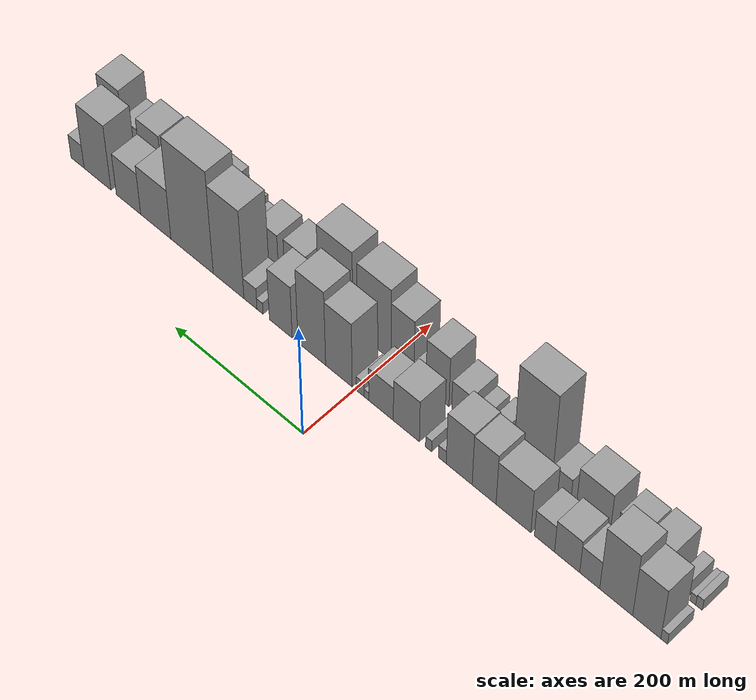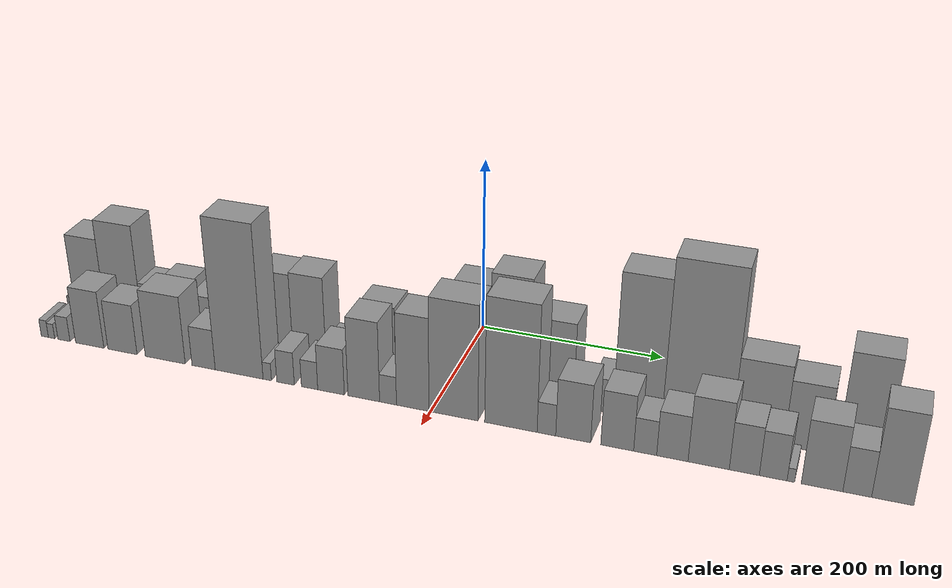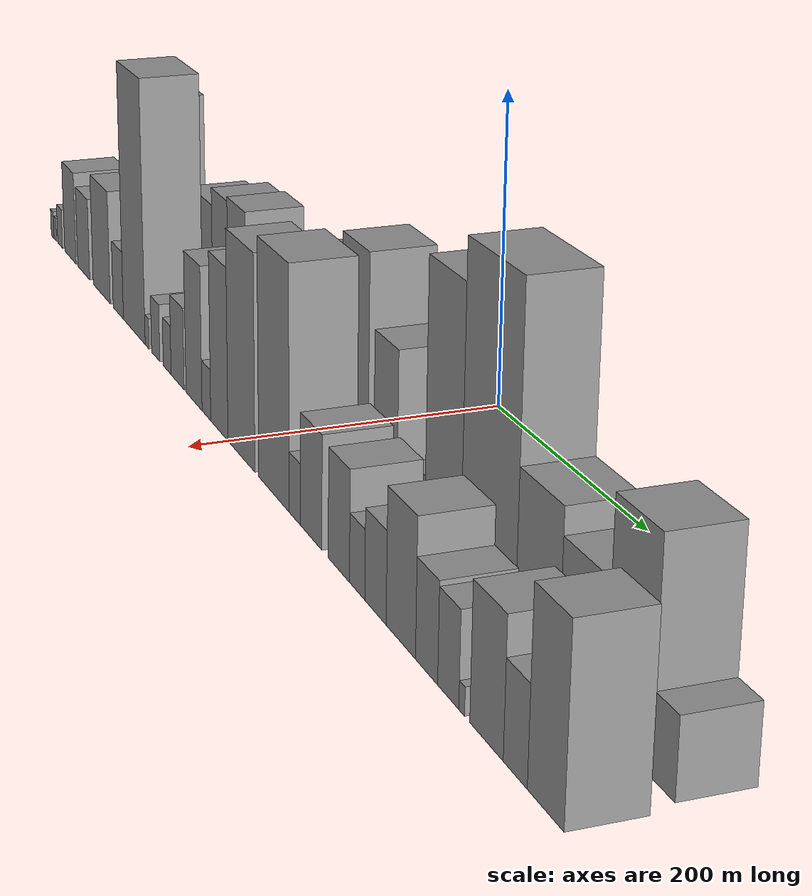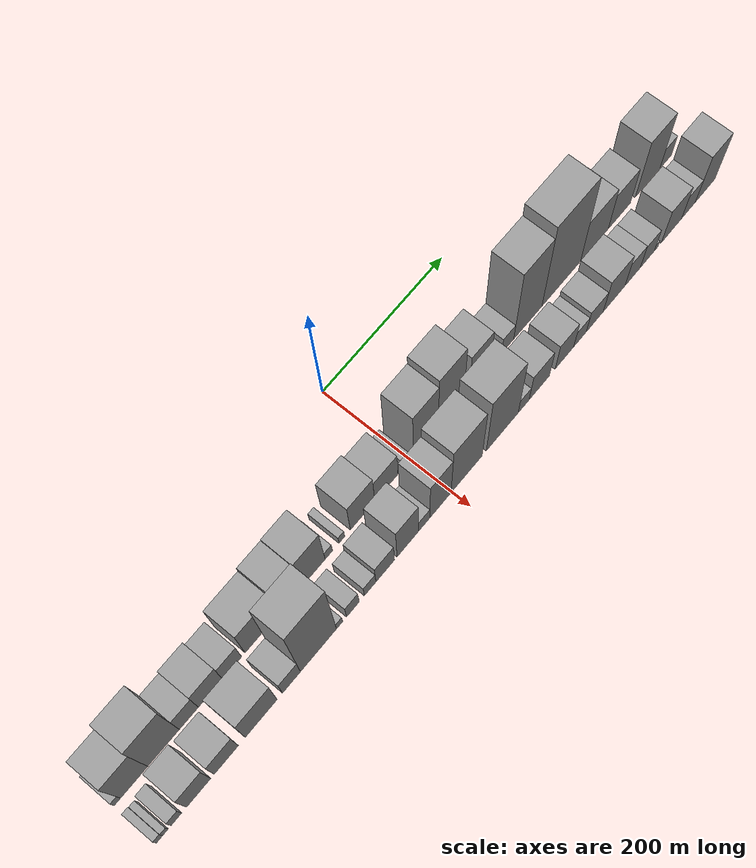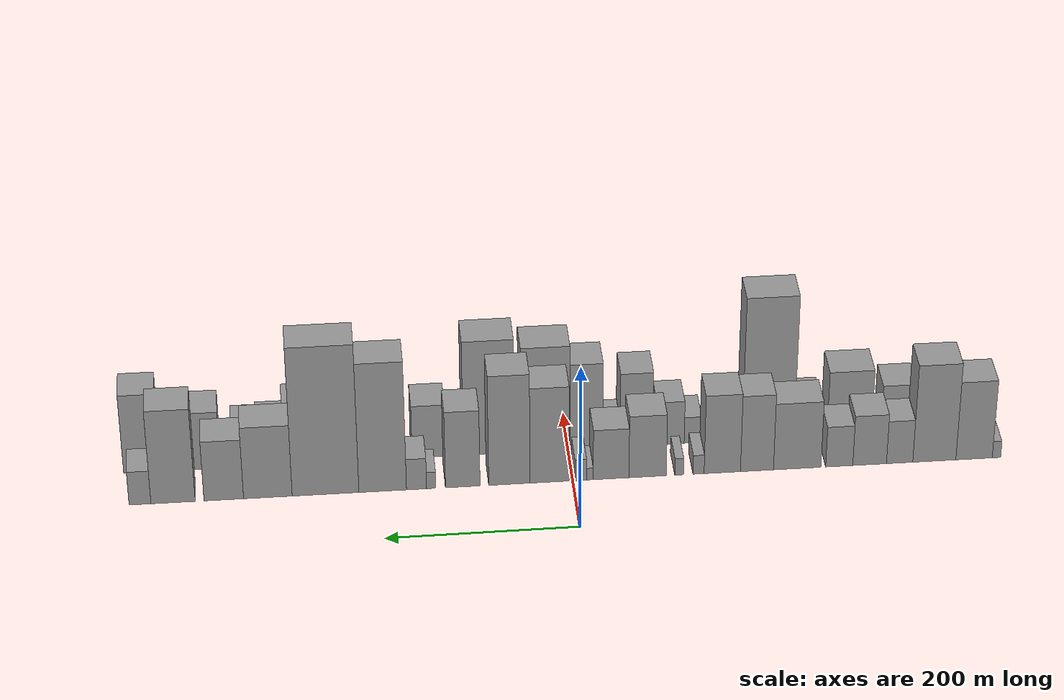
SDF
<sdf version="1.6">
 <world name="default">
  <scene>
   <sky><clouds><speed>12</speed></clouds></sky>
   <ambient>0.4 0.4 0.4 1</ambient>
   <background>0.7 0.7 0.7 1</background>
   <shadows>1</shadows>
  </scene>
  <gravity>0 0 -9.8066</gravity>
  <magnetic_field>6e-06 2.3e-05 -4.2e-05</magnetic_field>
  <physics default="0" name="default_physics" type="ode">
   <ode>
    <solver>
     <type>quick</type>
     <iters>10</iters>
     <sor>1.0</sor>
     <use_dynamic_moi_rescaling>0</use_dynamic_moi_rescaling>
    </solver>
    <constraints>
     <cfm>0</cfm>
     <erp>0.2</erp>
     <contact_max_correcting_vel>100</contact_max_correcting_vel>
     <contact_surface_layer>0.001</contact_surface_layer>
    </constraints>
   </ode>
   <max_step_size>0.004</max_step_size>
   <real_time_factor>1</real_time_factor>
   <real_time_update_rate>250</real_time_update_rate>
  </physics>
  <light name="sun" type="directional">
   <pose>0 0 10 0 0 0</pose>
   <diffuse>0.8 0.8 0.8 1</diffuse>
   <specular>0.2 0.2 0.2 1</specular>
   <attenuation>
    <range>1000</range>
    <constant>0.9</constant>
    <linear>0.01</linear>
    <quadratic>0.001</quadratic>
   </attenuation>
   <direction>-0.5 0.1 -0.9</direction>
  </light>
  <model name="building_1">
   <static>1</static>
   <pose>100.0000 -445.4748 0 0.000000 0.000000 0.000000</pose>
   <link name="link">
    <pose>0 0 10.50 0 0 0</pose>
    <collision name="collision"><geometry><box><size>40.0000 9.0504 21.0000</size></box></geometry></collision>
    <visual name="visual">
     <cast_shadows>0</cast_shadows>
     <geometry><box><size>40.0000 9.0504 21.0000</size></box></geometry>
     <material>
      <script>
       <uri>model://grey_wall/materials/scripts</uri>
       <uri>model://grey_wall/materials/textures</uri>
       <name>vrc/grey_wall</name>
      </script>
     </material>
    </visual>
   </link>
  </model>
  <model name="building_2">
   <static>1</static>
   <pose>100.0000 -421.6555 0 0.000000 0.000000 0.000000</pose>
   <link name="link">
    <pose>0 0 49.50 0 0 0</pose>
    <collision name="collision"><geometry><box><size>40.0000 38.5883 99.0000</size></box></geometry></collision>
    <visual name="visual">
     <cast_shadows>0</cast_shadows>
     <geometry><box><size>40.0000 38.5883 99.0000</size></box></geometry>
     <material>
      <script>
       <uri>model://grey_wall/materials/scripts</uri>
       <uri>model://grey_wall/materials/textures</uri>
       <name>vrc/grey_wall</name>
      </script>
     </material>
    </visual>
   </link>
  </model>
  <model name="building_3">
   <static>1</static>
   <pose>100.0000 -379.5401 0 0.000000 0.000000 0.000000</pose>
   <link name="link">
    <pose>0 0 61.50 0 0 0</pose>
    <collision name="collision"><geometry><box><size>40.0000 45.6425 123.0000</size></box></geometry></collision>
    <visual name="visual">
     <cast_shadows>0</cast_shadows>
     <geometry><box><size>40.0000 45.6425 123.0000</size></box></geometry>
     <material>
      <script>
       <uri>model://grey_wall/materials/scripts</uri>
       <uri>model://grey_wall/materials/textures</uri>
       <name>vrc/grey_wall</name>
      </script>
     </material>
    </visual>
   </link>
  </model>
  <model name="building_4">
   <static>1</static>
   <pose>100.0000 -342.8014 0 0.000000 0.000000 0.000000</pose>
   <link name="link">
    <pose>0 0 27.00 0 0 0</pose>
    <collision name="collision"><geometry><box><size>40.0000 27.8349 54.0000</size></box></geometry></collision>
    <visual name="visual">
     <cast_shadows>0</cast_shadows>
     <geometry><box><size>40.0000 27.8349 54.0000</size></box></geometry>
     <material>
      <script>
       <uri>model://grey_wall/materials/scripts</uri>
       <uri>model://grey_wall/materials/textures</uri>
       <name>vrc/grey_wall</name>
      </script>
     </material>
    </visual>
   </link>
  </model>
  <model name="building_5">
   <static>1</static>
   <pose>100.0000 -311.0895 0 0.000000 0.000000 0.000000</pose>
   <link name="link">
    <pose>0 0 31.50 0 0 0</pose>
    <collision name="collision"><geometry><box><size>40.0000 35.5888 63.0000</size></box></geometry></collision>
    <visual name="visual">
     <cast_shadows>0</cast_shadows>
     <geometry><box><size>40.0000 35.5888 63.0000</size></box></geometry>
     <material>
      <script>
       <uri>model://grey_wall/materials/scripts</uri>
       <uri>model://grey_wall/materials/textures</uri>
       <name>vrc/grey_wall</name>
      </script>
     </material>
    </visual>
   </link>
  </model>
  <model name="building_6">
   <static>1</static>
   <pose>100.0000 -278.9993 0 0.000000 0.000000 0.000000</pose>
   <link name="link">
    <pose>0 0 25.50 0 0 0</pose>
    <collision name="collision"><geometry><box><size>40.0000 28.5917 51.0000</size></box></geometry></collision>
    <visual name="visual">
     <cast_shadows>0</cast_shadows>
     <geometry><box><size>40.0000 28.5917 51.0000</size></box></geometry>
     <material>
      <script>
       <uri>model://grey_wall/materials/scripts</uri>
       <uri>model://grey_wall/materials/textures</uri>
       <name>vrc/grey_wall</name>
      </script>
     </material>
    </visual>
   </link>
  </model>
  <model name="building_7">
   <static>1</static>
   <pose>100.0000 -234.6841 0 0.000000 0.000000 0.000000</pose>
   <link name="link">
    <pose>0 0 42.00 0 0 0</pose>
    <collision name="collision"><geometry><box><size>40.0000 50.0388 84.0000</size></box></geometry></collision>
    <visual name="visual">
     <cast_shadows>0</cast_shadows>
     <geometry><box><size>40.0000 50.0388 84.0000</size></box></geometry>
     <material>
      <script>
       <uri>model://grey_wall/materials/scripts</uri>
       <uri>model://grey_wall/materials/textures</uri>
       <name>vrc/grey_wall</name>
      </script>
     </material>
    </visual>
   </link>
  </model>
  <model name="building_8">
   <static>1</static>
   <pose>100.0000 -192.2802 0 0.000000 0.000000 0.000000</pose>
   <link name="link">
    <pose>0 0 48.00 0 0 0</pose>
    <collision name="collision"><geometry><box><size>40.0000 34.7690 96.0000</size></box></geometry></collision>
    <visual name="visual">
     <cast_shadows>0</cast_shadows>
     <geometry><box><size>40.0000 34.7690 96.0000</size></box></geometry>
     <material>
      <script>
       <uri>model://grey_wall/materials/scripts</uri>
       <uri>model://grey_wall/materials/textures</uri>
       <name>vrc/grey_wall</name>
      </script>
     </material>
    </visual>
   </link>
  </model>
  <model name="building_9">
   <static>1</static>
   <pose>100.0000 -155.8249 0 0.000000 0.000000 0.000000</pose>
   <link name="link">
    <pose>0 0 49.50 0 0 0</pose>
    <collision name="collision"><geometry><box><size>40.0000 38.1416 99.0000</size></box></geometry></collision>
    <visual name="visual">
     <cast_shadows>0</cast_shadows>
     <geometry><box><size>40.0000 38.1416 99.0000</size></box></geometry>
     <material>
      <script>
       <uri>model://grey_wall/materials/scripts</uri>
       <uri>model://grey_wall/materials/textures</uri>
       <name>vrc/grey_wall</name>
      </script>
     </material>
    </visual>
   </link>
  </model>
  <model name="building_10">
   <static>1</static>
   <pose>100.0000 -130.9674 0 0.000000 0.000000 0.000000</pose>
   <link name="link">
    <pose>0 0 12.00 0 0 0</pose>
    <collision name="collision"><geometry><box><size>40.0000 11.5733 24.0000</size></box></geometry></collision>
    <visual name="visual">
     <cast_shadows>0</cast_shadows>
     <geometry><box><size>40.0000 11.5733 24.0000</size></box></geometry>
     <material>
      <script>
       <uri>model://grey_wall/materials/scripts</uri>
       <uri>model://grey_wall/materials/textures</uri>
       <name>vrc/grey_wall</name>
      </script>
     </material>
    </visual>
   </link>
  </model>
  <model name="building_11">
   <static>1</static>
   <pose>100.0000 -110.6185 0 0.000000 0.000000 0.000000</pose>
   <link name="link">
    <pose>0 0 10.50 0 0 0</pose>
    <collision name="collision"><geometry><box><size>40.0000 9.1246 21.0000</size></box></geometry></collision>
    <visual name="visual">
     <cast_shadows>0</cast_shadows>
     <geometry><box><size>40.0000 9.1246 21.0000</size></box></geometry>
     <material>
      <script>
       <uri>model://grey_wall/materials/scripts</uri>
       <uri>model://grey_wall/materials/textures</uri>
       <name>vrc/grey_wall</name>
      </script>
     </material>
    </visual>
   </link>
  </model>
  <model name="building_12">
   <static>1</static>
   <pose>100.0000 -77.5080 0 0.000000 0.000000 0.000000</pose>
   <link name="link">
    <pose>0 0 39.00 0 0 0</pose>
    <collision name="collision"><geometry><box><size>40.0000 39.0963 78.0000</size></box></geometry></collision>
    <visual name="visual">
     <cast_shadows>0</cast_shadows>
     <geometry><box><size>40.0000 39.0963 78.0000</size></box></geometry>
     <material>
      <script>
       <uri>model://grey_wall/materials/scripts</uri>
       <uri>model://grey_wall/materials/textures</uri>
       <name>vrc/grey_wall</name>
      </script>
     </material>
    </visual>
   </link>
  </model>
  <model name="building_13">
   <static>1</static>
   <pose>100.0000 -39.3229 0 0.000000 0.000000 0.000000</pose>
   <link name="link">
    <pose>0 0 31.50 0 0 0</pose>
    <collision name="collision"><geometry><box><size>40.0000 37.2738 63.0000</size></box></geometry></collision>
    <visual name="visual">
     <cast_shadows>0</cast_shadows>
     <geometry><box><size>40.0000 37.2738 63.0000</size></box></geometry>
     <material>
      <script>
       <uri>model://grey_wall/materials/scripts</uri>
       <uri>model://grey_wall/materials/textures</uri>
       <name>vrc/grey_wall</name>
      </script>
     </material>
    </visual>
   </link>
  </model>
  <model name="building_14">
   <static>1</static>
   <pose>100.0000 -17.2214 0 0.000000 0.000000 0.000000</pose>
   <link name="link">
    <pose>0 0 7.50 0 0 0</pose>
    <collision name="collision"><geometry><box><size>40.0000 6.9292 15.0000</size></box></geometry></collision>
    <visual name="visual">
     <cast_shadows>0</cast_shadows>
     <geometry><box><size>40.0000 6.9292 15.0000</size></box></geometry>
     <material>
      <script>
       <uri>model://grey_wall/materials/scripts</uri>
       <uri>model://grey_wall/materials/textures</uri>
       <name>vrc/grey_wall</name>
      </script>
     </material>
    </visual>
   </link>
  </model>
  <model name="building_15">
   <static>1</static>
   <pose>100.0000 -7.6588 0 0.000000 0.000000 0.000000</pose>
   <link name="link">
    <pose>0 0 13.50 0 0 0</pose>
    <collision name="collision"><geometry><box><size>40.0000 12.1960 27.0000</size></box></geometry></collision>
    <visual name="visual">
     <cast_shadows>0</cast_shadows>
     <geometry><box><size>40.0000 12.1960 27.0000</size></box></geometry>
     <material>
      <script>
       <uri>model://grey_wall/materials/scripts</uri>
       <uri>model://grey_wall/materials/textures</uri>
       <name>vrc/grey_wall</name>
      </script>
     </material>
    </visual>
   </link>
  </model>
  <model name="building_16">
   <static>1</static>
   <pose>100.0000 24.8571 0 0.000000 0.000000 0.000000</pose>
   <link name="link">
    <pose>0 0 60.00 0 0 0</pose>
    <collision name="collision"><geometry><box><size>40.0000 40.8360 120.0000</size></box></geometry></collision>
    <visual name="visual">
     <cast_shadows>0</cast_shadows>
     <geometry><box><size>40.0000 40.8360 120.0000</size></box></geometry>
     <material>
      <script>
       <uri>model://grey_wall/materials/scripts</uri>
       <uri>model://grey_wall/materials/textures</uri>
       <name>vrc/grey_wall</name>
      </script>
     </material>
    </visual>
   </link>
  </model>
  <model name="building_17">
   <static>1</static>
   <pose>100.0000 66.7723 0 0.000000 0.000000 0.000000</pose>
   <link name="link">
    <pose>0 0 69.00 0 0 0</pose>
    <collision name="collision"><geometry><box><size>40.0000 42.9944 138.0000</size></box></geometry></collision>
    <visual name="visual">
     <cast_shadows>0</cast_shadows>
     <geometry><box><size>40.0000 42.9944 138.0000</size></box></geometry>
     <material>
      <script>
       <uri>model://grey_wall/materials/scripts</uri>
       <uri>model://grey_wall/materials/textures</uri>
       <name>vrc/grey_wall</name>
      </script>
     </material>
    </visual>
   </link>
  </model>
  <model name="building_18">
   <static>1</static>
   <pose>100.0000 115.2290 0 0.000000 0.000000 0.000000</pose>
   <link name="link">
    <pose>0 0 48.00 0 0 0</pose>
    <collision name="collision"><geometry><box><size>40.0000 35.9190 96.0000</size></box></geometry></collision>
    <visual name="visual">
     <cast_shadows>0</cast_shadows>
     <geometry><box><size>40.0000 35.9190 96.0000</size></box></geometry>
     <material>
      <script>
       <uri>model://grey_wall/materials/scripts</uri>
       <uri>model://grey_wall/materials/textures</uri>
       <name>vrc/grey_wall</name>
      </script>
     </material>
    </visual>
   </link>
  </model>
  <model name="building_19">
   <static>1</static>
   <pose>100.0000 148.0085 0 0.000000 0.000000 0.000000</pose>
   <link name="link">
    <pose>0 0 10.50 0 0 0</pose>
    <collision name="collision"><geometry><box><size>40.0000 9.6399 21.0000</size></box></geometry></collision>
    <visual name="visual">
     <cast_shadows>0</cast_shadows>
     <geometry><box><size>40.0000 9.6399 21.0000</size></box></geometry>
     <material>
      <script>
       <uri>model://grey_wall/materials/scripts</uri>
       <uri>model://grey_wall/materials/textures</uri>
       <name>vrc/grey_wall</name>
      </script>
     </material>
    </visual>
   </link>
  </model>
  <model name="building_20">
   <static>1</static>
   <pose>100.0000 163.2437 0 0.000000 0.000000 0.000000</pose>
   <link name="link">
    <pose>0 0 19.50 0 0 0</pose>
    <collision name="collision"><geometry><box><size>40.0000 20.8304 39.0000</size></box></geometry></collision>
    <visual name="visual">
     <cast_shadows>0</cast_shadows>
     <geometry><box><size>40.0000 20.8304 39.0000</size></box></geometry>
     <material>
      <script>
       <uri>model://grey_wall/materials/scripts</uri>
       <uri>model://grey_wall/materials/textures</uri>
       <name>vrc/grey_wall</name>
      </script>
     </material>
    </visual>
   </link>
  </model>
  <model name="building_21">
   <static>1</static>
   <pose>100.0000 198.2992 0 0.000000 0.000000 0.000000</pose>
   <link name="link">
    <pose>0 0 81.00 0 0 0</pose>
    <collision name="collision"><geometry><box><size>40.0000 49.2806 162.0000</size></box></geometry></collision>
    <visual name="visual">
     <cast_shadows>0</cast_shadows>
     <geometry><box><size>40.0000 49.2806 162.0000</size></box></geometry>
     <material>
      <script>
       <uri>model://grey_wall/materials/scripts</uri>
       <uri>model://grey_wall/materials/textures</uri>
       <name>vrc/grey_wall</name>
      </script>
     </material>
    </visual>
   </link>
  </model>
  <model name="building_22">
   <static>1</static>
   <pose>100.0000 257.4117 0 0.000000 0.000000 0.000000</pose>
   <link name="link">
    <pose>0 0 93.00 0 0 0</pose>
    <collision name="collision"><geometry><box><size>40.0000 68.9444 186.0000</size></box></geometry></collision>
    <visual name="visual">
     <cast_shadows>0</cast_shadows>
     <geometry><box><size>40.0000 68.9444 186.0000</size></box></geometry>
     <material>
      <script>
       <uri>model://grey_wall/materials/scripts</uri>
       <uri>model://grey_wall/materials/textures</uri>
       <name>vrc/grey_wall</name>
      </script>
     </material>
    </visual>
   </link>
  </model>
  <model name="building_23">
   <static>1</static>
   <pose>100.0000 316.9421 0 0.000000 0.000000 0.000000</pose>
   <link name="link">
    <pose>0 0 45.00 0 0 0</pose>
    <collision name="collision"><geometry><box><size>40.0000 50.1164 90.0000</size></box></geometry></collision>
    <visual name="visual">
     <cast_shadows>0</cast_shadows>
     <geometry><box><size>40.0000 50.1164 90.0000</size></box></geometry>
     <material>
      <script>
       <uri>model://grey_wall/materials/scripts</uri>
       <uri>model://grey_wall/materials/textures</uri>
       <name>vrc/grey_wall</name>
      </script>
     </material>
    </visual>
   </link>
  </model>
  <model name="building_24">
   <static>1</static>
   <pose>100.0000 362.3453 0 0.000000 0.000000 0.000000</pose>
   <link name="link">
    <pose>0 0 37.50 0 0 0</pose>
    <collision name="collision"><geometry><box><size>40.0000 40.6899 75.0000</size></box></geometry></collision>
    <visual name="visual">
     <cast_shadows>0</cast_shadows>
     <geometry><box><size>40.0000 40.6899 75.0000</size></box></geometry>
     <material>
      <script>
       <uri>model://grey_wall/materials/scripts</uri>
       <uri>model://grey_wall/materials/textures</uri>
       <name>vrc/grey_wall</name>
      </script>
     </material>
    </visual>
   </link>
  </model>
  <model name="building_25">
   <static>1</static>
   <pose>100.0000 414.4526 0 0.000000 0.000000 0.000000</pose>
   <link name="link">
    <pose>0 0 58.50 0 0 0</pose>
    <collision name="collision"><geometry><box><size>40.0000 45.5247 117.0000</size></box></geometry></collision>
    <visual name="visual">
     <cast_shadows>0</cast_shadows>
     <geometry><box><size>40.0000 45.5247 117.0000</size></box></geometry>
     <material>
      <script>
       <uri>model://grey_wall/materials/scripts</uri>
       <uri>model://grey_wall/materials/textures</uri>
       <name>vrc/grey_wall</name>
      </script>
     </material>
    </visual>
   </link>
  </model>
  <model name="building_26">
   <static>1</static>
   <pose>100.0000 448.3930 0 0.000000 0.000000 0.000000</pose>
   <link name="link">
    <pose>0 0 21.00 0 0 0</pose>
    <collision name="collision"><geometry><box><size>40.0000 22.3562 42.0000</size></box></geometry></collision>
    <visual name="visual">
     <cast_shadows>0</cast_shadows>
     <geometry><box><size>40.0000 22.3562 42.0000</size></box></geometry>
     <material>
      <script>
       <uri>model://grey_wall/materials/scripts</uri>
       <uri>model://grey_wall/materials/textures</uri>
       <name>vrc/grey_wall</name>
      </script>
     </material>
    </visual>
   </link>
  </model>
  <model name="building_27">
   <static>1</static>
   <pose>155.0000 -445.5426 0 0.000000 0.000000 0.000000</pose>
   <link name="link">
    <pose>0 0 10.50 0 0 0</pose>
    <collision name="collision"><geometry><box><size>40.0000 8.9148 21.0000</size></box></geometry></collision>
    <visual name="visual">
     <cast_shadows>0</cast_shadows>
     <geometry><box><size>40.0000 8.9148 21.0000</size></box></geometry>
     <material>
      <script>
       <uri>model://grey_wall/materials/scripts</uri>
       <uri>model://grey_wall/materials/textures</uri>
       <name>vrc/grey_wall</name>
      </script>
     </material>
    </visual>
   </link>
  </model>
  <model name="building_28">
   <static>1</static>
   <pose>155.0000 -437.1191 0 0.000000 0.000000 0.000000</pose>
   <link name="link">
    <pose>0 0 9.00 0 0 0</pose>
    <collision name="collision"><geometry><box><size>40.0000 7.9323 18.0000</size></box></geometry></collision>
    <visual name="visual">
     <cast_shadows>0</cast_shadows>
     <geometry><box><size>40.0000 7.9323 18.0000</size></box></geometry>
     <material>
      <script>
       <uri>model://grey_wall/materials/scripts</uri>
       <uri>model://grey_wall/materials/textures</uri>
       <name>vrc/grey_wall</name>
      </script>
     </material>
    </visual>
   </link>
  </model>
  <model name="building_29">
   <static>1</static>
   <pose>155.0000 -421.6066 0 0.000000 0.000000 0.000000</pose>
   <link name="link">
    <pose>0 0 15.00 0 0 0</pose>
    <collision name="collision"><geometry><box><size>40.0000 15.0926 30.0000</size></box></geometry></collision>
    <visual name="visual">
     <cast_shadows>0</cast_shadows>
     <geometry><box><size>40.0000 15.0926 30.0000</size></box></geometry>
     <material>
      <script>
       <uri>model://grey_wall/materials/scripts</uri>
       <uri>model://grey_wall/materials/textures</uri>
       <name>vrc/grey_wall</name>
      </script>
     </material>
    </visual>
   </link>
  </model>
  <model name="building_30">
   <static>1</static>
   <pose>155.0000 -389.6466 0 0.000000 0.000000 0.000000</pose>
   <link name="link">
    <pose>0 0 34.50 0 0 0</pose>
    <collision name="collision"><geometry><box><size>40.0000 34.8274 69.0000</size></box></geometry></collision>
    <visual name="visual">
     <cast_shadows>0</cast_shadows>
     <geometry><box><size>40.0000 34.8274 69.0000</size></box></geometry>
     <material>
      <script>
       <uri>model://grey_wall/materials/scripts</uri>
       <uri>model://grey_wall/materials/textures</uri>
       <name>vrc/grey_wall</name>
      </script>
     </material>
    </visual>
   </link>
  </model>
  <model name="building_31">
   <static>1</static>
   <pose>155.0000 -349.5543 0 0.000000 0.000000 0.000000</pose>
   <link name="link">
    <pose>0 0 30.00 0 0 0</pose>
    <collision name="collision"><geometry><box><size>40.0000 35.3572 60.0000</size></box></geometry></collision>
    <visual name="visual">
     <cast_shadows>0</cast_shadows>
     <geometry><box><size>40.0000 35.3572 60.0000</size></box></geometry>
     <material>
      <script>
       <uri>model://grey_wall/materials/scripts</uri>
       <uri>model://grey_wall/materials/textures</uri>
       <name>vrc/grey_wall</name>
      </script>
     </material>
    </visual>
   </link>
  </model>
  <model name="building_32">
   <static>1</static>
   <pose>155.0000 -298.1085 0 0.000000 0.000000 0.000000</pose>
   <link name="link">
    <pose>0 0 40.50 0 0 0</pose>
    <collision name="collision"><geometry><box><size>40.0000 47.5344 81.0000</size></box></geometry></collision>
    <visual name="visual">
     <cast_shadows>0</cast_shadows>
     <geometry><box><size>40.0000 47.5344 81.0000</size></box></geometry>
     <material>
      <script>
       <uri>model://grey_wall/materials/scripts</uri>
       <uri>model://grey_wall/materials/textures</uri>
       <name>vrc/grey_wall</name>
      </script>
     </material>
    </visual>
   </link>
  </model>
  <model name="building_33">
   <static>1</static>
   <pose>155.0000 -252.7538 0 0.000000 0.000000 0.000000</pose>
   <link name="link">
    <pose>0 0 24.00 0 0 0</pose>
    <collision name="collision"><geometry><box><size>40.0000 27.1748 48.0000</size></box></geometry></collision>
    <visual name="visual">
     <cast_shadows>0</cast_shadows>
     <geometry><box><size>40.0000 27.1748 48.0000</size></box></geometry>
     <material>
      <script>
       <uri>model://grey_wall/materials/scripts</uri>
       <uri>model://grey_wall/materials/textures</uri>
       <name>vrc/grey_wall</name>
      </script>
     </material>
    </visual>
   </link>
  </model>
  <model name="building_34">
   <static>1</static>
   <pose>155.0000 -211.5533 0 0.000000 0.000000 0.000000</pose>
   <link name="link">
    <pose>0 0 90.00 0 0 0</pose>
    <collision name="collision"><geometry><box><size>40.0000 55.2262 180.0000</size></box></geometry></collision>
    <visual name="visual">
     <cast_shadows>0</cast_shadows>
     <geometry><box><size>40.0000 55.2262 180.0000</size></box></geometry>
     <material>
      <script>
       <uri>model://grey_wall/materials/scripts</uri>
       <uri>model://grey_wall/materials/textures</uri>
       <name>vrc/grey_wall</name>
      </script>
     </material>
    </visual>
   </link>
  </model>
  <model name="building_35">
   <static>1</static>
   <pose>155.0000 -179.1649 0 0.000000 0.000000 0.000000</pose>
   <link name="link">
    <pose>0 0 10.50 0 0 0</pose>
    <collision name="collision"><geometry><box><size>40.0000 9.5507 21.0000</size></box></geometry></collision>
    <visual name="visual">
     <cast_shadows>0</cast_shadows>
     <geometry><box><size>40.0000 9.5507 21.0000</size></box></geometry>
     <material>
      <script>
       <uri>model://grey_wall/materials/scripts</uri>
       <uri>model://grey_wall/materials/textures</uri>
       <name>vrc/grey_wall</name>
      </script>
     </material>
    </visual>
   </link>
  </model>
  <model name="building_36">
   <static>1</static>
   <pose>155.0000 -158.4771 0 0.000000 0.000000 0.000000</pose>
   <link name="link">
    <pose>0 0 19.50 0 0 0</pose>
    <collision name="collision"><geometry><box><size>40.0000 19.8249 39.0000</size></box></geometry></collision>
    <visual name="visual">
     <cast_shadows>0</cast_shadows>
     <geometry><box><size>40.0000 19.8249 39.0000</size></box></geometry>
     <material>
      <script>
       <uri>model://grey_wall/materials/scripts</uri>
       <uri>model://grey_wall/materials/textures</uri>
       <name>vrc/grey_wall</name>
      </script>
     </material>
    </visual>
   </link>
  </model>
  <model name="building_37">
   <static>1</static>
   <pose>155.0000 -131.4436 0 0.000000 0.000000 0.000000</pose>
   <link name="link">
    <pose>0 0 16.50 0 0 0</pose>
    <collision name="collision"><geometry><box><size>40.0000 18.2419 33.0000</size></box></geometry></collision>
    <visual name="visual">
     <cast_shadows>0</cast_shadows>
     <geometry><box><size>40.0000 18.2419 33.0000</size></box></geometry>
     <material>
      <script>
       <uri>model://grey_wall/materials/scripts</uri>
       <uri>model://grey_wall/materials/textures</uri>
       <name>vrc/grey_wall</name>
      </script>
     </material>
    </visual>
   </link>
  </model>
  <model name="building_38">
   <static>1</static>
   <pose>155.0000 -107.6092 0 0.000000 0.000000 0.000000</pose>
   <link name="link">
    <pose>0 0 27.00 0 0 0</pose>
    <collision name="collision"><geometry><box><size>40.0000 29.4269 54.0000</size></box></geometry></collision>
    <visual name="visual">
     <cast_shadows>0</cast_shadows>
     <geometry><box><size>40.0000 29.4269 54.0000</size></box></geometry>
     <material>
      <script>
       <uri>model://grey_wall/materials/scripts</uri>
       <uri>model://grey_wall/materials/textures</uri>
       <name>vrc/grey_wall</name>
      </script>
     </material>
    </visual>
   </link>
  </model>
  <model name="building_39">
   <static>1</static>
   <pose>155.0000 -71.6360 0 0.000000 0.000000 0.000000</pose>
   <link name="link">
    <pose>0 0 46.50 0 0 0</pose>
    <collision name="collision"><geometry><box><size>40.0000 34.5195 93.0000</size></box></geometry></collision>
    <visual name="visual">
     <cast_shadows>0</cast_shadows>
     <geometry><box><size>40.0000 34.5195 93.0000</size></box></geometry>
     <material>
      <script>
       <uri>model://grey_wall/materials/scripts</uri>
       <uri>model://grey_wall/materials/textures</uri>
       <name>vrc/grey_wall</name>
      </script>
     </material>
    </visual>
   </link>
  </model>
  <model name="building_40">
   <static>1</static>
   <pose>155.0000 -45.2618 0 0.000000 0.000000 0.000000</pose>
   <link name="link">
    <pose>0 0 16.50 0 0 0</pose>
    <collision name="collision"><geometry><box><size>40.0000 18.2290 33.0000</size></box></geometry></collision>
    <visual name="visual">
     <cast_shadows>0</cast_shadows>
     <geometry><box><size>40.0000 18.2290 33.0000</size></box></geometry>
     <material>
      <script>
       <uri>model://grey_wall/materials/scripts</uri>
       <uri>model://grey_wall/materials/textures</uri>
       <name>vrc/grey_wall</name>
      </script>
     </material>
    </visual>
   </link>
  </model>
  <model name="building_41">
   <static>1</static>
   <pose>155.0000 -18.7393 0 0.000000 0.000000 0.000000</pose>
   <link name="link">
    <pose>0 0 54.00 0 0 0</pose>
    <collision name="collision"><geometry><box><size>40.0000 34.8160 108.0000</size></box></geometry></collision>
    <visual name="visual">
     <cast_shadows>0</cast_shadows>
     <geometry><box><size>40.0000 34.8160 108.0000</size></box></geometry>
     <material>
      <script>
       <uri>model://grey_wall/materials/scripts</uri>
       <uri>model://grey_wall/materials/textures</uri>
       <name>vrc/grey_wall</name>
      </script>
     </material>
    </visual>
   </link>
  </model>
  <model name="building_42">
   <static>1</static>
   <pose>155.0000 24.3873 0 0.000000 0.000000 0.000000</pose>
   <link name="link">
    <pose>0 0 66.00 0 0 0</pose>
    <collision name="collision"><geometry><box><size>40.0000 51.4371 132.0000</size></box></geometry></collision>
    <visual name="visual">
     <cast_shadows>0</cast_shadows>
     <geometry><box><size>40.0000 51.4371 132.0000</size></box></geometry>
     <material>
      <script>
       <uri>model://grey_wall/materials/scripts</uri>
       <uri>model://grey_wall/materials/textures</uri>
       <name>vrc/grey_wall</name>
      </script>
     </material>
    </visual>
   </link>
  </model>
  <model name="building_43">
   <static>1</static>
   <pose>155.0000 83.9994 0 0.000000 0.000000 0.000000</pose>
   <link name="link">
    <pose>0 0 72.00 0 0 0</pose>
    <collision name="collision"><geometry><box><size>40.0000 53.7871 144.0000</size></box></geometry></collision>
    <visual name="visual">
     <cast_shadows>0</cast_shadows>
     <geometry><box><size>40.0000 53.7871 144.0000</size></box></geometry>
     <material>
      <script>
       <uri>model://grey_wall/materials/scripts</uri>
       <uri>model://grey_wall/materials/textures</uri>
       <name>vrc/grey_wall</name>
      </script>
     </material>
    </visual>
   </link>
  </model>
  <model name="building_44">
   <static>1</static>
   <pose>155.0000 120.2955 0 0.000000 0.000000 0.000000</pose>
   <link name="link">
    <pose>0 0 18.00 0 0 0</pose>
    <collision name="collision"><geometry><box><size>40.0000 18.8051 36.0000</size></box></geometry></collision>
    <visual name="visual">
     <cast_shadows>0</cast_shadows>
     <geometry><box><size>40.0000 18.8051 36.0000</size></box></geometry>
     <material>
      <script>
       <uri>model://grey_wall/materials/scripts</uri>
       <uri>model://grey_wall/materials/textures</uri>
       <name>vrc/grey_wall</name>
      </script>
     </material>
    </visual>
   </link>
  </model>
  <model name="building_45">
   <static>1</static>
   <pose>155.0000 147.1729 0 0.000000 0.000000 0.000000</pose>
   <link name="link">
    <pose>0 0 33.00 0 0 0</pose>
    <collision name="collision"><geometry><box><size>40.0000 34.9497 66.0000</size></box></geometry></collision>
    <visual name="visual">
     <cast_shadows>0</cast_shadows>
     <geometry><box><size>40.0000 34.9497 66.0000</size></box></geometry>
     <material>
      <script>
       <uri>model://grey_wall/materials/scripts</uri>
       <uri>model://grey_wall/materials/textures</uri>
       <name>vrc/grey_wall</name>
      </script>
     </material>
    </visual>
   </link>
  </model>
  <model name="building_46">
   <static>1</static>
   <pose>155.0000 190.7833 0 0.000000 0.000000 0.000000</pose>
   <link name="link">
    <pose>0 0 31.50 0 0 0</pose>
    <collision name="collision"><geometry><box><size>40.0000 32.2712 63.0000</size></box></geometry></collision>
    <visual name="visual">
     <cast_shadows>0</cast_shadows>
     <geometry><box><size>40.0000 32.2712 63.0000</size></box></geometry>
     <material>
      <script>
       <uri>model://grey_wall/materials/scripts</uri>
       <uri>model://grey_wall/materials/textures</uri>
       <name>vrc/grey_wall</name>
      </script>
     </material>
    </visual>
   </link>
  </model>
  <model name="building_47">
   <static>1</static>
   <pose>155.0000 218.0986 0 0.000000 0.000000 0.000000</pose>
   <link name="link">
    <pose>0 0 19.50 0 0 0</pose>
    <collision name="collision"><geometry><box><size>40.0000 22.3595 39.0000</size></box></geometry></collision>
    <visual name="visual">
     <cast_shadows>0</cast_shadows>
     <geometry><box><size>40.0000 22.3595 39.0000</size></box></geometry>
     <material>
      <script>
       <uri>model://grey_wall/materials/scripts</uri>
       <uri>model://grey_wall/materials/textures</uri>
       <name>vrc/grey_wall</name>
      </script>
     </material>
    </visual>
   </link>
  </model>
  <model name="building_48">
   <static>1</static>
   <pose>155.0000 244.3158 0 0.000000 0.000000 0.000000</pose>
   <link name="link">
    <pose>0 0 25.50 0 0 0</pose>
    <collision name="collision"><geometry><box><size>40.0000 30.0748 51.0000</size></box></geometry></collision>
    <visual name="visual">
     <cast_shadows>0</cast_shadows>
     <geometry><box><size>40.0000 30.0748 51.0000</size></box></geometry>
     <material>
      <script>
       <uri>model://grey_wall/materials/scripts</uri>
       <uri>model://grey_wall/materials/textures</uri>
       <name>vrc/grey_wall</name>
      </script>
     </material>
    </visual>
   </link>
  </model>
  <model name="building_49">
   <static>1</static>
   <pose>155.0000 278.8706 0 0.000000 0.000000 0.000000</pose>
   <link name="link">
    <pose>0 0 37.50 0 0 0</pose>
    <collision name="collision"><geometry><box><size>40.0000 39.0349 75.0000</size></box></geometry></collision>
    <visual name="visual">
     <cast_shadows>0</cast_shadows>
     <geometry><box><size>40.0000 39.0349 75.0000</size></box></geometry>
     <material>
      <script>
       <uri>model://grey_wall/materials/scripts</uri>
       <uri>model://grey_wall/materials/textures</uri>
       <name>vrc/grey_wall</name>
      </script>
     </material>
    </visual>
   </link>
  </model>
  <model name="building_50">
   <static>1</static>
   <pose>155.0000 312.3990 0 0.000000 0.000000 0.000000</pose>
   <link name="link">
    <pose>0 0 27.00 0 0 0</pose>
    <collision name="collision"><geometry><box><size>40.0000 28.0217 54.0000</size></box></geometry></collision>
    <visual name="visual">
     <cast_shadows>0</cast_shadows>
     <geometry><box><size>40.0000 28.0217 54.0000</size></box></geometry>
     <material>
      <script>
       <uri>model://grey_wall/materials/scripts</uri>
       <uri>model://grey_wall/materials/textures</uri>
       <name>vrc/grey_wall</name>
      </script>
     </material>
    </visual>
   </link>
  </model>
  <model name="building_51">
   <static>1</static>
   <pose>155.0000 339.2380 0 0.000000 0.000000 0.000000</pose>
   <link name="link">
    <pose>0 0 25.50 0 0 0</pose>
    <collision name="collision"><geometry><box><size>40.0000 25.6562 51.0000</size></box></geometry></collision>
    <visual name="visual">
     <cast_shadows>0</cast_shadows>
     <geometry><box><size>40.0000 25.6562 51.0000</size></box></geometry>
     <material>
      <script>
       <uri>model://grey_wall/materials/scripts</uri>
       <uri>model://grey_wall/materials/textures</uri>
       <name>vrc/grey_wall</name>
      </script>
     </material>
    </visual>
   </link>
  </model>
  <model name="building_52">
   <static>1</static>
   <pose>155.0000 355.5234 0 0.000000 0.000000 0.000000</pose>
   <link name="link">
    <pose>0 0 7.50 0 0 0</pose>
    <collision name="collision"><geometry><box><size>40.0000 6.9146 15.0000</size></box></geometry></collision>
    <visual name="visual">
     <cast_shadows>0</cast_shadows>
     <geometry><box><size>40.0000 6.9146 15.0000</size></box></geometry>
     <material>
      <script>
       <uri>model://grey_wall/materials/scripts</uri>
       <uri>model://grey_wall/materials/textures</uri>
       <name>vrc/grey_wall</name>
      </script>
     </material>
    </visual>
   </link>
  </model>
  <model name="building_53">
   <static>1</static>
   <pose>155.0000 383.8023 0 0.000000 0.000000 0.000000</pose>
   <link name="link">
    <pose>0 0 36.00 0 0 0</pose>
    <collision name="collision"><geometry><box><size>40.0000 37.6431 72.0000</size></box></geometry></collision>
    <visual name="visual">
     <cast_shadows>0</cast_shadows>
     <geometry><box><size>40.0000 37.6431 72.0000</size></box></geometry>
     <material>
      <script>
       <uri>model://grey_wall/materials/scripts</uri>
       <uri>model://grey_wall/materials/textures</uri>
       <name>vrc/grey_wall</name>
      </script>
     </material>
    </visual>
   </link>
  </model>
  <model name="building_54">
   <static>1</static>
   <pose>155.0000 415.4657 0 0.000000 0.000000 0.000000</pose>
   <link name="link">
    <pose>0 0 25.50 0 0 0</pose>
    <collision name="collision"><geometry><box><size>40.0000 25.6838 51.0000</size></box></geometry></collision>
    <visual name="visual">
     <cast_shadows>0</cast_shadows>
     <geometry><box><size>40.0000 25.6838 51.0000</size></box></geometry>
     <material>
      <script>
       <uri>model://grey_wall/materials/scripts</uri>
       <uri>model://grey_wall/materials/textures</uri>
       <name>vrc/grey_wall</name>
      </script>
     </material>
    </visual>
   </link>
  </model>
  <model name="building_55">
   <static>1</static>
   <pose>155.0000 446.9264 0 0.000000 0.000000 0.000000</pose>
   <link name="link">
    <pose>0 0 49.50 0 0 0</pose>
    <collision name="collision"><geometry><box><size>40.0000 37.2376 99.0000</size></box></geometry></collision>
    <visual name="visual">
     <cast_shadows>0</cast_shadows>
     <geometry><box><size>40.0000 37.2376 99.0000</size></box></geometry>
     <material>
      <script>
       <uri>model://grey_wall/materials/scripts</uri>
       <uri>model://grey_wall/materials/textures</uri>
       <name>vrc/grey_wall</name>
      </script>
     </material>
    </visual>
   </link>
  </model>
 </world>
</sdf>
